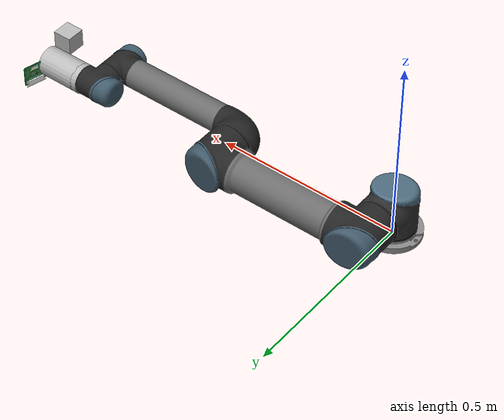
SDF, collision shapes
<sdf version='1.7'>
  <model name='ur5_4dof'>
    <link name='base_link'>
      <inertial>
        <pose>0 0 0 0 -0 0</pose>
        <mass>5</mass>
        <inertia>
          <ixx>0.1</ixx>
          <ixy>0</ixy>
          <ixz>0</ixz>
          <iyy>0.1</iyy>
          <iyz>0</iyz>
          <izz>0.1</izz>
        </inertia>
      </inertial>
      <collision name='base_link_collision'>
        <pose>0 0 0.003 0 -0 2.35619</pose>
        <geometry>
          <mesh>
            <scale>1 1 1</scale>
            <uri>model://ur_description/meshes/ur5/visual/base.dae</uri>
          </mesh>
        </geometry>
      </collision>
      <visual name='base_link_visual'>
        <pose>0 0 0.003 0 -0 2.35619</pose>
        <geometry>
          <mesh>
            <scale>1 1 1</scale>
            <uri>model://ur_description/meshes/ur5/visual/base.dae</uri>
          </mesh>
        </geometry>
      </visual>
    </link>
    <joint name='shoulder_pan_joint' type='revolute'>
      <pose relative_to='base_link'>0 0 0.089159 0 -0 0</pose>
      <parent>base_link</parent>
      <child>shoulder_link</child>
      <axis>
        <xyz>0 0 1</xyz>
        <limit>
          <lower>-6.28319</lower>
          <upper>6.28319</upper>
          <effort>150</effort>
          <velocity>3.14159</velocity>
        </limit>
        <dynamics>
          <spring_reference>0</spring_reference>
          <spring_stiffness>0</spring_stiffness>
        </dynamics>
      </axis>
    </joint>
    <link name='shoulder_link'>
      <pose relative_to='shoulder_pan_joint'>0 0 0 0 -0 0</pose>
      <inertial>
        <pose>0 0 0 0 -0 0</pose>
        <mass>4</mass>
        <inertia>
          <ixx>0.08</ixx>
          <ixy>0</ixy>
          <ixz>0</ixz>
          <iyy>0.08</iyy>
          <iyz>0</iyz>
          <izz>0.08</izz>
        </inertia>
      </inertial>
      <collision name='shoulder_link_collision'>
        <pose>0 0 0 0 -0 0</pose>
        <geometry>
          <mesh>
            <scale>1 1 1</scale>
            <uri>model://ur_description/meshes/ur5/visual/shoulder.dae</uri>
          </mesh>
        </geometry>
      </collision>
      <visual name='shoulder_link_visual'>
        <pose>0 0 0 0 -0 0</pose>
        <geometry>
          <mesh>
            <scale>1 1 1</scale>
            <uri>model://ur_description/meshes/ur5/visual/shoulder.dae</uri>
          </mesh>
        </geometry>
      </visual>
    </link>
    <joint name='shoulder_lift_joint' type='revolute'>
      <pose relative_to='shoulder_link'>0 0.13585 0 0 1.5708 0</pose>
      <parent>shoulder_link</parent>
      <child>upper_arm_link</child>
      <axis>
        <xyz>0 1 0</xyz>
        <limit>
          <lower>-6.28319</lower>
          <upper>6.28319</upper>
          <effort>150</effort>
          <velocity>3.14159</velocity>
        </limit>
        <dynamics>
          <spring_reference>0</spring_reference>
          <spring_stiffness>0</spring_stiffness>
        </dynamics>
      </axis>
    </joint>
    <link name='upper_arm_link'>
      <pose relative_to='shoulder_lift_joint'>0 0 0 0 -0 0</pose>
      <inertial>
        <pose>0 0 0 0 -0 0</pose>
        <mass>3</mass>
        <inertia>
          <ixx>0.06</ixx>
          <ixy>0</ixy>
          <ixz>0</ixz>
          <iyy>0.06</iyy>
          <iyz>0</iyz>
          <izz>0.06</izz>
        </inertia>
      </inertial>
      <collision name='upper_arm_link_collision'>
        <pose>0 0 0 0 -0 0</pose>
        <geometry>
          <mesh>
            <scale>1 1 1</scale>
            <uri>model://ur_description/meshes/ur5/visual/upperarm.dae</uri>
          </mesh>
        </geometry>
      </collision>
      <visual name='upper_arm_link_visual'>
        <pose>0 0 0 0 -0 0</pose>
        <geometry>
          <mesh>
            <scale>1 1 1</scale>
            <uri>model://ur_description/meshes/ur5/visual/upperarm.dae</uri>
          </mesh>
        </geometry>
      </visual>
    </link>
    <joint name='elbow_joint' type='revolute'>
      <pose relative_to='upper_arm_link'>0 -0.1197 0.425 0 -0 0</pose>
      <parent>upper_arm_link</parent>
      <child>forearm_link</child>
      <axis>
        <xyz>0 1 0</xyz>
        <limit>
          <lower>-6.28319</lower>
          <upper>6.28319</upper>
          <effort>150</effort>
          <velocity>3.14159</velocity>
        </limit>
        <dynamics>
          <spring_reference>0</spring_reference>
          <spring_stiffness>0</spring_stiffness>
        </dynamics>
      </axis>
    </joint>
    <link name='forearm_link'>
      <pose relative_to='elbow_joint'>0 0 0 0 -0 0</pose>
      <inertial>
        <pose>0 0 0 0 -0 0</pose>
        <mass>2.5</mass>
        <inertia>
          <ixx>0.05</ixx>
          <ixy>0</ixy>
          <ixz>0</ixz>
          <iyy>0.05</iyy>
          <iyz>0</iyz>
          <izz>0.05</izz>
        </inertia>
      </inertial>
      <collision name='forearm_link_collision'>
        <pose>0 0 0 0 -0 0</pose>
        <geometry>
          <mesh>
            <scale>1 1 1</scale>
            <uri>model://ur_description/meshes/ur5/visual/forearm.dae</uri>
          </mesh>
        </geometry>
      </collision>
      <visual name='forearm_link_visual'>
        <pose>0 0 0 0 -0 0</pose>
        <geometry>
          <mesh>
            <scale>1 1 1</scale>
            <uri>model://ur_description/meshes/ur5/visual/forearm.dae</uri>
          </mesh>
        </geometry>
      </visual>
    </link>
    <joint name='wrist_joint' type='revolute'>
      <pose relative_to='forearm_link'>0 0 0.39225 0 -0 0</pose>
      <parent>forearm_link</parent>
      <child>wrist_link</child>
      <axis>
        <xyz>0 1 0</xyz>
        <limit>
          <lower>-3.14159</lower>
          <upper>0.785398</upper>
          <effort>28</effort>
          <velocity>3.14159</velocity>
        </limit>
        <dynamics>
          <spring_reference>0</spring_reference>
          <spring_stiffness>0</spring_stiffness>
        </dynamics>
      </axis>
    </joint>
    <link name='wrist_link'>
      <pose relative_to='wrist_joint'>0 0 0 0 -0 0</pose>
      <inertial>
        <pose>0.002649 0.040847 0.080309 0 -0 0</pose>
        <mass>5.98287</mass>
        <inertia>
          <ixx>0.141893</ixx>
          <ixy>-0.00117215</ixy>
          <ixz>-0.00116721</ixz>
          <iyy>0.128114</iyy>
          <iyz>-0.00223116</iyz>
          <izz>0.110391</izz>
        </inertia>
      </inertial>
      <collision name='wrist_link_collision'>
        <pose>0 0 0 0 -0 0</pose>
        <geometry>
          <mesh>
            <scale>1 1 1</scale>
            <uri>model://ur_description/meshes/ur5/visual/wrist1.dae</uri>
          </mesh>
        </geometry>
      </collision>
      <collision name='wrist_link_fixed_joint_lump__ee_link_collision_1'>
        <pose>0 0 0.17695 0 -0 0</pose>
        <geometry>
          <box>
            <size>0.05 0.05 0.05</size>
          </box>
        </geometry>
      </collision>
      <collision name='wrist_link_fixed_joint_lump__grip_mount_link_collision_2'>
        <pose>0 0.0943 0.04295 0 -0 0</pose>
        <geometry>
          <box>
            <size>0.03 0.02 0.02</size>
          </box>
        </geometry>
      </collision>
      <collision name='wrist_link_fixed_joint_lump__gripper_camera_link_collision_3'>
        <pose>0.0317 0.1148 0.15395 -0 -0.26179 1.5693</pose>
        <geometry>
          <mesh>
            <scale>0.0025 0.0024 0.0012</scale>
            <uri>model://ur5_4dof/meshes/camera.dae</uri>
          </mesh>
        </geometry>
        <surface>
          <contact>
            <ode/>
          </contact>
          <friction>
            <ode/>
          </friction>
        </surface>
      </collision>
      <collision name='wrist_link_fixed_joint_lump__robotiq_hande_coupler_collision_4'>
        <pose>0 0.0943 0.0484 0 -0 0</pose>
        <geometry>
          <cylinder>
            <length>0.0169</length>
            <radius>0.0385</radius>
          </cylinder>
        </geometry>
      </collision>
      <collision name='wrist_link_fixed_joint_lump__robotiq_hande_link_collision_5'>
        <pose>0 0.0943 0.1074 0 -0 0</pose>
        <geometry>
          <cylinder>
            <length>0.1069</length>
            <radius>0.0385</radius>
          </cylinder>
        </geometry>
      </collision>
      <visual name='wrist_link_visual'>
        <pose>0 0 0 0 -0 0</pose>
        <geometry>
          <mesh>
            <scale>1 1 1</scale>
            <uri>model://ur_description/meshes/ur5/visual/wrist1.dae</uri>
          </mesh>
        </geometry>
      </visual>
      <visual name='wrist_link_fixed_joint_lump__gripper_camera_link_visual_1'>
        <pose>0.0317 0.1148 0.15395 -0 -0.26179 1.5693</pose>
        <geometry>
          <mesh>
            <scale>0.0025 0.0024 0.0012</scale>
            <uri>model://ur5_4dof/meshes/camera.dae</uri>
          </mesh>
        </geometry>
      </visual>
      <visual name='wrist_link_fixed_joint_lump__robotiq_hande_coupler_visual_2'>
        <pose>0 0.0943 0.04295 0 -0 0</pose>
        <geometry>
          <mesh>
            <scale>1 1 1</scale>
            <uri>model://robotiq_hande_description/meshes/io_coupler.dae</uri>
          </mesh>
        </geometry>
      </visual>
      <visual name='wrist_link_fixed_joint_lump__robotiq_hande_link_visual_3'>
        <pose>0 0.0943 0.05395 0 -0 0</pose>
        <geometry>
          <mesh>
            <scale>1 1 1</scale>
            <uri>model://robotiq_hande_description/meshes/hande.dae</uri>
          </mesh>
        </geometry>
      </visual>
      <sensor name='gazebo_camera' type='camera'>
        <always_on>1</always_on>
        <update_rate>30</update_rate>
        <camera>
          <horizontal_fov>1.047</horizontal_fov>
          <image>
            <width>640</width>
            <height>480</height>
            <format>R8G8B8</format>
          </image>
          <clip>
            <near>0.1</near>
            <far>100</far>
          </clip>
        </camera>
        <plugin name='gazebo_ros_camera' filename='libgazebo_ros_camera.so'>
          <ros>
            <namespace>/camera</namespace>
            <remapping>
              <remap from='/image_raw' to='/camera/image_raw'/>
            </remapping>
          </ros>
          <cameraName>gazebo_camera</cameraName>
          <imageTopicName>image_raw</imageTopicName>
          <cameraInfoTopicName>camera_info</cameraInfoTopicName>
          <frameName>gripper_camera_link</frameName>
        </plugin>
        <pose>0.0317 0.1148 0.15395 -0 -0.26179 1.5693</pose>
      </sensor>
    </link>
  </model>
</sdf>
